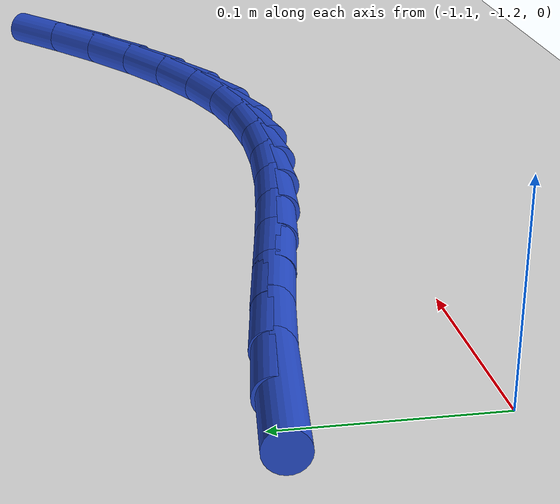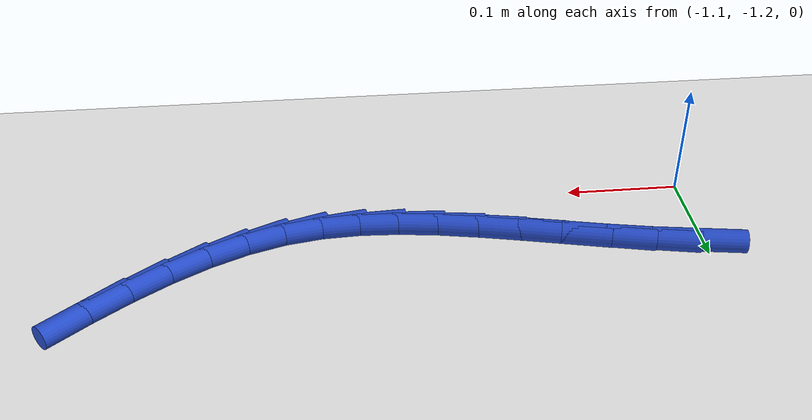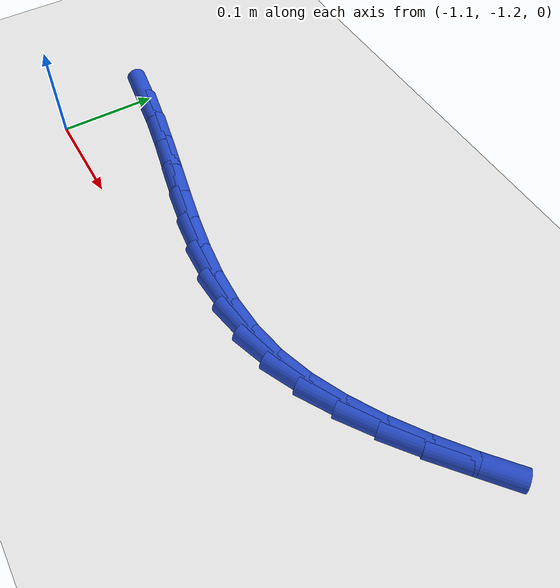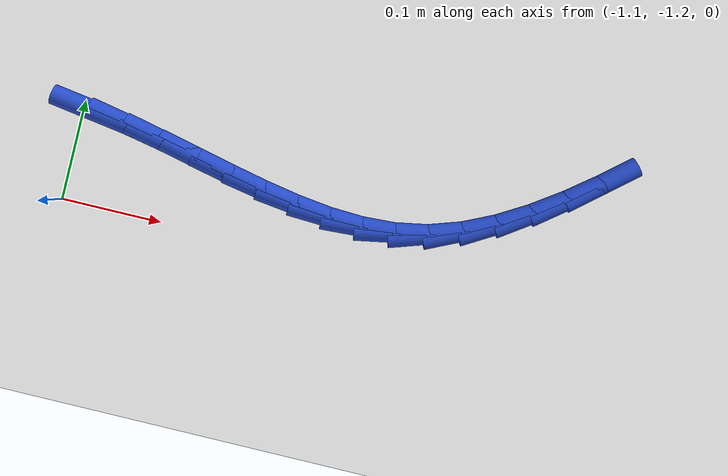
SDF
<sdf version="1.6">
 <world name="default">
  <model name="ground_plane">
   <static>1</static>
   <link name="link">
    <collision name="collision">
     <geometry><plane><normal>0 0 1</normal><size>100 100</size></plane></geometry>
     <surface><friction><ode><mu>100</mu><mu2>50</mu2></ode></friction></surface>
    </collision>
    <visual name="visual">
     <cast_shadows>0</cast_shadows>
     <geometry><plane><normal>0 0 1</normal><size>100 100</size></plane></geometry>
     <material>
      <script><uri>file://media/materials/scripts/gazebo.material</uri><name>Gazebo/WhiteGlow</name></script>
     </material>
    </visual>
   </link>
  </model>
  <model name="line">
   <link name="link_150">
    <pose>-1.0913848413718759 -1.1074961639743137 0.01 0 1.57 -0.15183859116877088</pose>
    <collision name="collision">
     <geometry><cylinder><radius>0.01</radius><length>0.08</length></cylinder></geometry>
    </collision>
    <visual name="visual">
     <material>
      <script><name>Gazebo/Blue</name><uri>file://media/materials/scripts/gazebo.material</uri></script>
     </material>
     <geometry><cylinder><radius>0.01</radius><length>0.08</length></cylinder></geometry>
    </visual>
   </link>
   <link name="link_151">
    <pose>-1.0537051734934857 -1.1132617685023654 0.01 0 1.57 -0.19441030378935772</pose>
    <collision name="collision">
     <geometry><cylinder><radius>0.01</radius><length>0.08</length></cylinder></geometry>
    </collision>
    <visual name="visual">
     <material>
      <script><name>Gazebo/Blue</name><uri>file://media/materials/scripts/gazebo.material</uri></script>
     </material>
     <geometry><cylinder><radius>0.01</radius><length>0.08</length></cylinder></geometry>
    </visual>
   </link>
   <link name="link_152">
    <pose>-1.0166476324651526 -1.1205582937182978 0.01 0 1.57 -0.21921553092855411</pose>
    <collision name="collision">
     <geometry><cylinder><radius>0.01</radius><length>0.08</length></cylinder></geometry>
    </collision>
    <visual name="visual">
     <material>
      <script><name>Gazebo/Blue</name><uri>file://media/materials/scripts/gazebo.material</uri></script>
     </material>
     <geometry><cylinder><radius>0.01</radius><length>0.08</length></cylinder></geometry>
    </visual>
   </link>
   <link name="link_153">
    <pose>-0.9802007862450159 -1.1286785004893223 0.01 0 1.57 -0.22584860636843995</pose>
    <collision name="collision">
     <geometry><cylinder><radius>0.01</radius><length>0.08</length></cylinder></geometry>
    </collision>
    <visual name="visual">
     <material>
      <script><name>Gazebo/Blue</name><uri>file://media/materials/scripts/gazebo.material</uri></script>
     </material>
     <geometry><cylinder><radius>0.01</radius><length>0.08</length></cylinder></geometry>
    </visual>
   </link>
   <link name="link_154">
    <pose>-0.9443532027912156 -1.136915149682649 0.01 0 1.57 -0.21353765644315215</pose>
    <collision name="collision">
     <geometry><cylinder><radius>0.01</radius><length>0.08</length></cylinder></geometry>
    </collision>
    <visual name="visual">
     <material>
      <script><name>Gazebo/Blue</name><uri>file://media/materials/scripts/gazebo.material</uri></script>
     </material>
     <geometry><cylinder><radius>0.01</radius><length>0.08</length></cylinder></geometry>
    </visual>
   </link>
   <link name="link_155">
    <pose>-0.9090934500618908 -1.1445610021654895 0.01 0 1.57 -0.18101854326933123</pose>
    <collision name="collision">
     <geometry><cylinder><radius>0.01</radius><length>0.08</length></cylinder></geometry>
    </collision>
    <visual name="visual">
     <material>
      <script><name>Gazebo/Blue</name><uri>file://media/materials/scripts/gazebo.material</uri></script>
     </material>
     <geometry><cylinder><radius>0.01</radius><length>0.08</length></cylinder></geometry>
    </visual>
   </link>
   <link name="link_156">
    <pose>-0.8744100960151818 -1.1509088188050542 0.01 0 1.57 -0.1265979375468776</pose>
    <collision name="collision">
     <geometry><cylinder><radius>0.01</radius><length>0.08</length></cylinder></geometry>
    </collision>
    <visual name="visual">
     <material>
      <script><name>Gazebo/Blue</name><uri>file://media/materials/scripts/gazebo.material</uri></script>
     </material>
     <geometry><cylinder><radius>0.01</radius><length>0.08</length></cylinder></geometry>
    </visual>
   </link>
   <link name="link_157">
    <pose>-0.840291708609228 -1.1552513604685544 0.01 0 1.57 -0.048525400859000464</pose>
    <collision name="collision">
     <geometry><cylinder><radius>0.01</radius><length>0.08</length></cylinder></geometry>
    </collision>
    <visual name="visual">
     <material>
      <script><name>Gazebo/Blue</name><uri>file://media/materials/scripts/gazebo.material</uri></script>
     </material>
     <geometry><cylinder><radius>0.01</radius><length>0.08</length></cylinder></geometry>
    </visual>
   </link>
   <link name="link_158">
    <pose>-0.8067268558021691 -1.156881388023201 0.01 0 1.57 0.0541437779178603</pose>
    <collision name="collision">
     <geometry><cylinder><radius>0.01</radius><length>0.08</length></cylinder></geometry>
    </collision>
    <visual name="visual">
     <material>
      <script><name>Gazebo/Blue</name><uri>file://media/materials/scripts/gazebo.material</uri></script>
     </material>
     <geometry><cylinder><radius>0.01</radius><length>0.08</length></cylinder></geometry>
    </visual>
   </link>
   <link name="link_159">
    <pose>-0.7737041055521446 -1.1550916623362049 0.01 0 1.57 0.1801236154079256</pose>
    <collision name="collision">
     <geometry><cylinder><radius>0.01</radius><length>0.08</length></cylinder></geometry>
    </collision>
    <visual name="visual">
     <material>
      <script><name>Gazebo/Blue</name><uri>file://media/materials/scripts/gazebo.material</uri></script>
     </material>
     <geometry><cylinder><radius>0.01</radius><length>0.08</length></cylinder></geometry>
    </visual>
   </link>
   <link name="link_160">
    <pose>-0.7412120258173339 -1.1491749442755512 0.01 0 1.57 0.31780643771845146</pose>
    <collision name="collision">
     <geometry><cylinder><radius>0.01</radius><length>0.08</length></cylinder></geometry>
    </collision>
    <visual name="visual">
     <material>
      <script><name>Gazebo/Blue</name><uri>file://media/materials/scripts/gazebo.material</uri></script>
     </material>
     <geometry><cylinder><radius>0.01</radius><length>0.08</length></cylinder></geometry>
    </visual>
   </link>
   <link name="link_161">
    <pose>-0.709251270579121 -1.1386612392956448 0.01 0 1.57 0.436408026021101</pose>
    <collision name="collision">
     <geometry><cylinder><radius>0.01</radius><length>0.08</length></cylinder></geometry>
    </collision>
    <visual name="visual">
     <material>
      <script><name>Gazebo/Blue</name><uri>file://media/materials/scripts/gazebo.material</uri></script>
     </material>
     <geometry><cylinder><radius>0.01</radius><length>0.08</length></cylinder></geometry>
    </visual>
   </link>
   <link name="link_162">
    <pose>-0.6778706228855407 -1.1240253103048716 0.01 0 1.57 0.530902639583286</pose>
    <collision name="collision">
     <geometry><cylinder><radius>0.01</radius><length>0.08</length></cylinder></geometry>
    </collision>
    <visual name="visual">
     <material>
      <script><name>Gazebo/Blue</name><uri>file://media/materials/scripts/gazebo.material</uri></script>
     </material>
     <geometry><cylinder><radius>0.01</radius><length>0.08</length></cylinder></geometry>
    </visual>
   </link>
   <link name="link_163">
    <pose>-0.6471308445336316 -1.1059770590414095 0.01 0 1.57 0.6045319492517032</pose>
    <collision name="collision">
     <geometry><cylinder><radius>0.01</radius><length>0.08</length></cylinder></geometry>
    </collision>
    <visual name="visual">
     <material>
      <script><name>Gazebo/Blue</name><uri>file://media/materials/scripts/gazebo.material</uri></script>
     </material>
     <geometry><cylinder><radius>0.01</radius><length>0.08</length></cylinder></geometry>
    </visual>
   </link>
   <link name="link_164">
    <pose>-0.6170926973204323 -1.0852263872434367 0.01 0 1.57 0.6604716674524477</pose>
    <collision name="collision">
     <geometry><cylinder><radius>0.01</radius><length>0.08</length></cylinder></geometry>
    </collision>
    <visual name="visual">
     <material>
      <script><name>Gazebo/Blue</name><uri>file://media/materials/scripts/gazebo.material</uri></script>
     </material>
     <geometry><cylinder><radius>0.01</radius><length>0.08</length></cylinder></geometry>
    </visual>
   </link>
   <link name="link_165">
    <pose>-0.5878169430429814 -1.0624831966491317 0.01 0 1.57 0.7012428538274315</pose>
    <collision name="collision">
     <geometry><cylinder><radius>0.01</radius><length>0.08</length></cylinder></geometry>
    </collision>
    <visual name="visual">
     <material>
      <script><name>Gazebo/Blue</name><uri>file://media/materials/scripts/gazebo.material</uri></script>
     </material>
     <geometry><cylinder><radius>0.01</radius><length>0.08</length></cylinder></geometry>
    </visual>
   </link>
  </model>
 </world>
</sdf>
